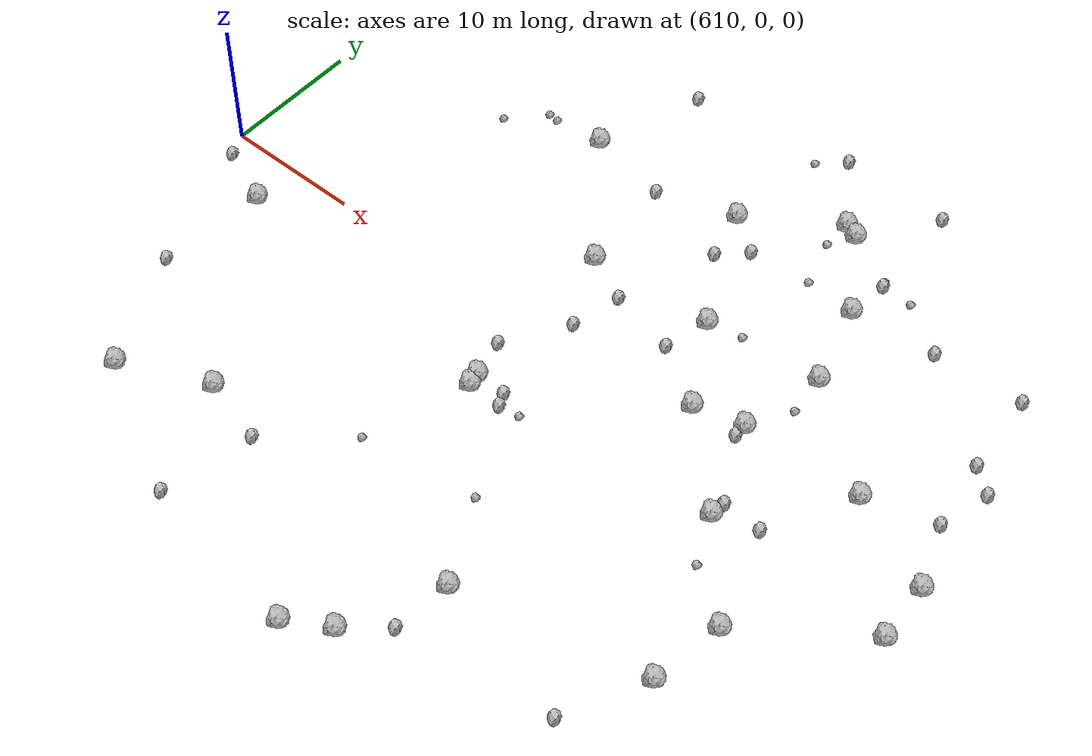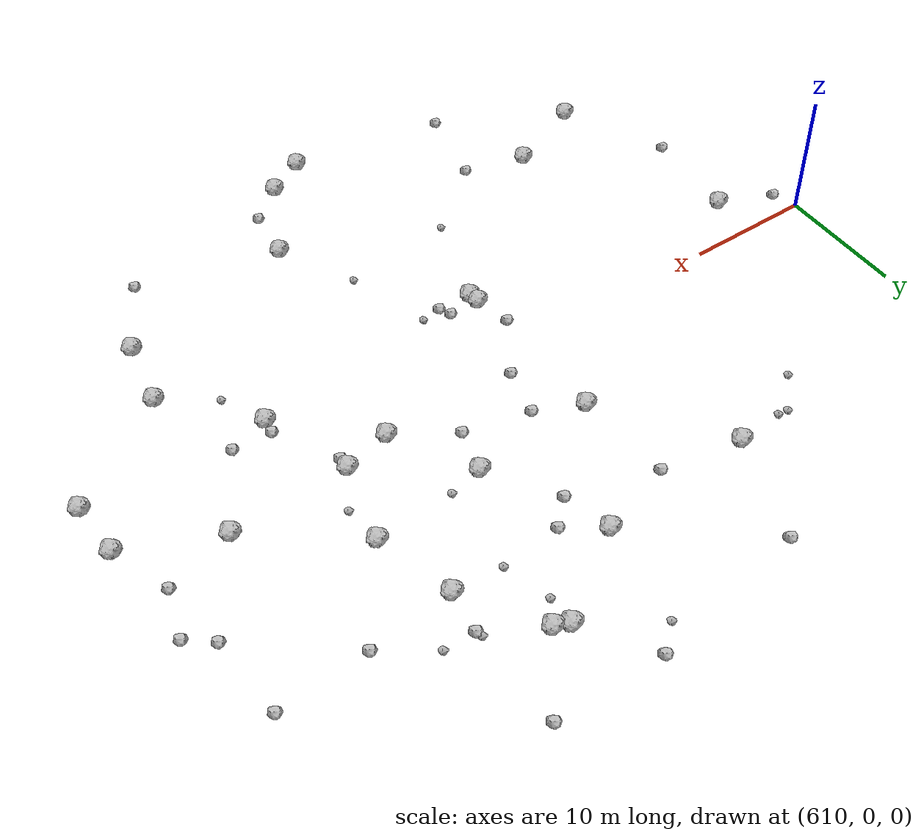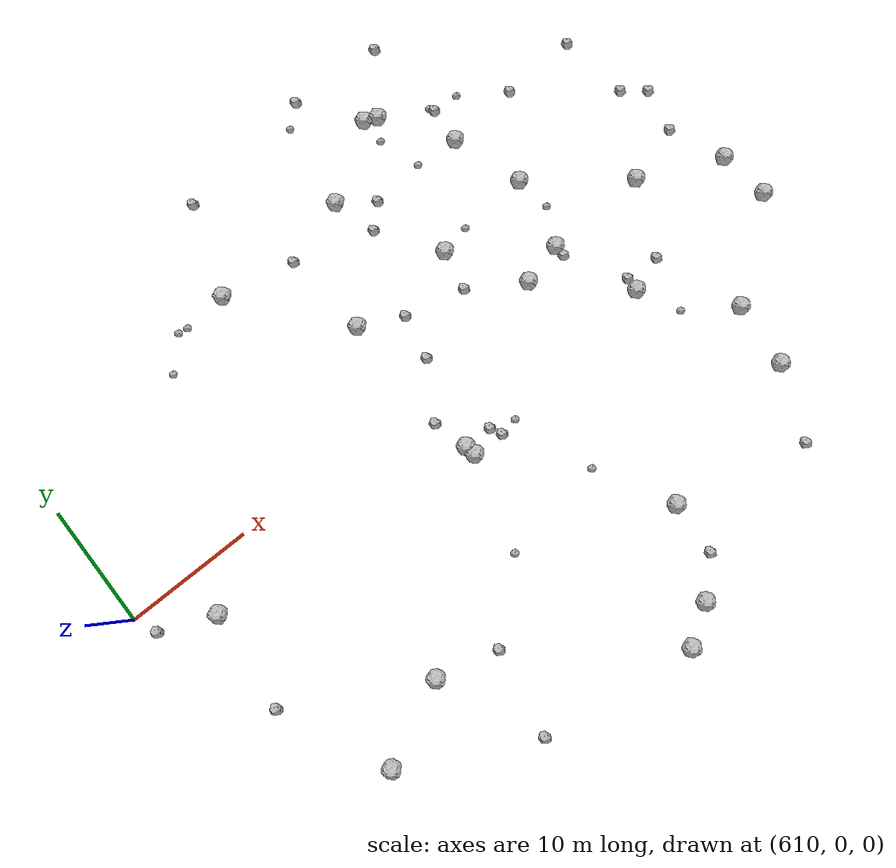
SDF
<sdf version="1.6">
 <world name="default">
  <include><uri>model://sun</uri></include>
  <model name="rock1_16_3">
   <include><uri>model://rock1</uri><pose>661.0299058993814 -10.25793116205777 0.5 0 0 0</pose></include>
  </model>
  <model name="rock1_16_4">
   <include><uri>model://rock1</uri><pose>654.2726588953589 8.763452566623414 0.5 0 0 0</pose></include>
  </model>
  <model name="rock1_16_5">
   <include><uri>model://rock1</uri><pose>615.1765441269796 -3.584505924151685 0.5 0 0 0</pose></include>
  </model>
  <model name="rock1_16_6">
   <include><uri>model://rock1</uri><pose>645.7705343547481 7.845210669978364 0.5 0 0 0</pose></include>
  </model>
  <model name="rock1_16_7">
   <include><uri>model://rock1</uri><pose>655.5330418016225 -4.106668602670336 0.5 0 0 0</pose></include>
  </model>
  <model name="rock1_16_8">
   <include><uri>model://rock1</uri><pose>636.5194223944505 7.3012574932320575 0.5 0 0 0</pose></include>
  </model>
  <model name="rock1_16_9">
   <include><uri>model://rock1</uri><pose>661.7598857399454 2.9731202139232593 0.5 0 0 0</pose></include>
  </model>
  <model name="rock1_16_10">
   <include><uri>model://rock1</uri><pose>637.3088258050885 -6.207433403417177 0.5 0 0 0</pose></include>
  </model>
  <model name="rock1_16_11">
   <include><uri>model://rock1</uri><pose>629.7534158537677 15.895994512219332 0.5 0 0 0</pose></include>
  </model>
  <model name="rock1_16_12">
   <include><uri>model://rock1</uri><pose>652.4867770345365 14.783123879522513 0.5 0 0 0</pose></include>
  </model>
  <model name="rock1_16_13">
   <include><uri>model://rock1</uri><pose>643.5821542377861 -25.246666971053173 0.5 0 0 0</pose></include>
  </model>
  <model name="rock1_16_14">
   <include><uri>model://rock1</uri><pose>660.2961959600096 -15.57795465280455 0.5 0 0 0</pose></include>
  </model>
  <model name="rock1_16_15">
   <include><uri>model://rock1</uri><pose>649.3484238862112 1.7427031512065767 0.5 0 0 0</pose></include>
  </model>
  <model name="rock1_16_16">
   <include><uri>model://rock1</uri><pose>637.144190804176 -5.341157276639365 0.5 0 0 0</pose></include>
  </model>
  <model name="rock1_16_17">
   <include><uri>model://rock1</uri><pose>618.4794640521243 -19.88624482833259 0.5 0 0 0</pose></include>
  </model>
  <model name="rock1_16_18">
   <include><uri>model://rock1</uri><pose>668.964340106432 -4.397950575812281 0.5 0 0 0</pose></include>
  </model>
  <model name="rock1_16_19">
   <include><uri>model://rock1</uri><pose>640.5945812947824 -27.034222624931598 0.5 0 0 0</pose></include>
  </model>
  <model name="rock1_16_20">
   <include><uri>model://rock1</uri><pose>647.7121327956046 20.792937974080807 0.5 0 0 0</pose></include>
  </model>
  <model name="rock1_16_21">
   <include><uri>model://rock1</uri><pose>648.7867950803834 20.329502164812325 0.5 0 0 0</pose></include>
  </model>
  <model name="rock1_16_22">
   <include><uri>model://rock1</uri><pose>646.6839334831153 -18.619365183745277 0.5 0 0 0</pose></include>
  </model>
  <model name="rock1_16_23">
   <include><uri>model://rock1</uri><pose>668.6073534096231 -0.11500429269785073 0.5 0 0 0</pose></include>
  </model>
  <model name="rock1_16_24">
   <include><uri>model://rock1</uri><pose>652.9238469927668 2.6530572803074577 0.5 0 0 0</pose></include>
  </model>
  <model name="rock1_16_25">
   <include><uri>model://rock1</uri><pose>624.7560975804198 -17.083861511640045 0.5 0 0 0</pose></include>
  </model>
  <model name="rock1_16_26">
   <include><uri>model://rock1</uri><pose>641.4885518603329 16.55317472559922 0.5 0 0 0</pose></include>
  </model>
  <model name="rock2_16_0">
   <include><uri>model://rock2</uri><pose>629.5772449287462 -18.389859115913055 0.3 0 0 0</pose></include>
  </model>
  <model name="rock2_16_1">
   <include><uri>model://rock2</uri><pose>658.5596687833726 -3.0970865529685696 0.3 0 0 0</pose></include>
  </model>
  <model name="rock2_16_2">
   <include><uri>model://rock2</uri><pose>644.9594332335515 4.501415507134801 0.3 0 0 0</pose></include>
  </model>
  <model name="rock2_16_3">
   <include><uri>model://rock2</uri><pose>628.2674377946541 -25.075086582167813 0.3 0 0 0</pose></include>
  </model>
  <model name="rock2_16_4">
   <include><uri>model://rock2</uri><pose>652.7996034074686 17.960398253829354 0.3 0 0 0</pose></include>
  </model>
  <model name="rock2_16_5">
   <include><uri>model://rock2</uri><pose>632.4227904010545 23.738039757798617 0.3 0 0 0</pose></include>
  </model>
  <model name="rock2_16_6">
   <include><uri>model://rock2</uri><pose>655.6408407053825 -2.9540444597153623 0.3 0 0 0</pose></include>
  </model>
  <model name="rock2_16_7">
   <include><uri>model://rock2</uri><pose>644.3166765907037 25.72783789128937 0.3 0 0 0</pose></include>
  </model>
  <model name="rock2_16_8">
   <include><uri>model://rock2</uri><pose>658.7576997777651 15.412474132599137 0.3 0 0 0</pose></include>
  </model>
  <model name="rock2_16_9">
   <include><uri>model://rock2</uri><pose>639.142631738333 1.9595464390513726 0.3 0 0 0</pose></include>
  </model>
  <model name="rock2_16_10">
   <include><uri>model://rock2</uri><pose>652.3983730163509 25.48123877340214 0.3 0 0 0</pose></include>
  </model>
  <model name="rock2_16_11">
   <include><uri>model://rock2</uri><pose>639.9633731582664 5.660611259658715 0.3 0 0 0</pose></include>
  </model>
  <model name="rock2_16_12">
   <include><uri>model://rock2</uri><pose>636.4185917911685 -2.4804750754438167 0.3 0 0 0</pose></include>
  </model>
  <model name="rock2_16_13">
   <include><uri>model://rock2</uri><pose>657.5046303707045 -21.33153198864897 0.3 0 0 0</pose></include>
  </model>
  <model name="rock2_16_14">
   <include><uri>model://rock2</uri><pose>665.3544798513083 15.77307119290787 0.3 0 0 0</pose></include>
  </model>
  <model name="rock2_16_15">
   <include><uri>model://rock2</uri><pose>665.9613595105988 9.706584554421894 0.3 0 0 0</pose></include>
  </model>
  <model name="rock2_16_16">
   <include><uri>model://rock2</uri><pose>652.9295992307376 1.7149013899265704 0.3 0 0 0</pose></include>
  </model>
  <model name="rock2_16_17">
   <include><uri>model://rock2</uri><pose>614.4654300507442 -11.526843978227276 0.3 0 0 0</pose></include>
  </model>
  <model name="rock2_16_18">
   <include><uri>model://rock2</uri><pose>639.4619594927904 -5.385987011037216 0.3 0 0 0</pose></include>
  </model>
  <model name="rock2_16_19">
   <include><uri>model://rock2</uri><pose>666.7988466504371 4.509806292320363 0.3 0 0 0</pose></include>
  </model>
  <model name="rock2_16_20">
   <include><uri>model://rock2</uri><pose>610.8931995196934 -1.7908361719610681 0.3 0 0 0</pose></include>
  </model>
  <model name="rock2_16_21">
   <include><uri>model://rock2</uri><pose>642.4298916713428 12.853106619050926 0.3 0 0 0</pose></include>
  </model>
  <model name="rock2_16_22">
   <include><uri>model://rock2</uri><pose>667.7716266469397 8.249156338196045 0.3 0 0 0</pose></include>
  </model>
  <model name="rock2_16_23">
   <include><uri>model://rock2</uri><pose>635.806315655406 14.743151010371136 0.3 0 0 0</pose></include>
  </model>
  <model name="rock2_16_24">
   <include><uri>model://rock2</uri><pose>644.216930274373 14.617994603330239 0.3 0 0 0</pose></include>
  </model>
  <model name="rock2_16_25">
   <include><uri>model://rock2</uri><pose>646.269944725348 -22.855844003521455 0.3 0 0 0</pose></include>
  </model>
  <model name="rock2_16_26">
   <include><uri>model://rock2</uri><pose>639.9019431320578 -6.309032985335186 0.3 0 0 0</pose></include>
  </model>
  <model name="rock3_16_0">
   <include><uri>model://rock3</uri><pose>643.512399642878 -12.654533060979283 0.2 0 0 0</pose></include>
  </model>
  <model name="rock3_16_1">
   <include><uri>model://rock3</uri><pose>648.7297587247257 15.009171099618897 0.2 0 0 0</pose></include>
  </model>
  <model name="rock3_16_2">
   <include><uri>model://rock3</uri><pose>634.8874530691119 -13.84885570104359 0.2 0 0 0</pose></include>
  </model>
  <model name="rock3_16_3">
   <include><uri>model://rock3</uri><pose>642.5076713329898 24.087355662126875 0.2 0 0 0</pose></include>
  </model>
  <model name="rock3_16_4">
   <include><uri>model://rock3</uri><pose>652.5941930576125 18.347872842697484 0.2 0 0 0</pose></include>
  </model>
  <model name="rock3_16_5">
   <include><uri>model://rock3</uri><pose>625.2443075581275 15.65538137653008 0.2 0 0 0</pose></include>
  </model>
  <model name="rock3_16_6">
   <include><uri>model://rock3</uri><pose>626.0226109555496 15.558511146429986 0.2 0 0 0</pose></include>
  </model>
  <model name="rock3_16_7">
   <include><uri>model://rock3</uri><pose>648.2785682556712 8.353323357706309 0.2 0 0 0</pose></include>
  </model>
  <model name="rock3_16_8">
   <include><uri>model://rock3</uri><pose>641.3893475493247 -6.1021492296872815 0.2 0 0 0</pose></include>
  </model>
  <model name="rock3_16_9">
   <include><uri>model://rock3</uri><pose>657.1341345609732 -7.610421098126476 0.2 0 0 0</pose></include>
  </model>
  <model name="rock3_16_10">
   <include><uri>model://rock3</uri><pose>647.6478853025911 18.558855652714115 0.2 0 0 0</pose></include>
  </model>
  <model name="rock3_16_11">
   <include><uri>model://rock3</uri><pose>655.0794407262714 17.848888057468905 0.2 0 0 0</pose></include>
  </model>
  <model name="rock3_16_12">
   <include><uri>model://rock3</uri><pose>654.5762212889058 5.707493950272216 0.2 0 0 0</pose></include>
  </model>
  <model name="rock3_16_13">
   <include><uri>model://rock3</uri><pose>622.9959194495665 13.225159414852776 0.2 0 0 0</pose></include>
  </model>
 </world>
</sdf>
